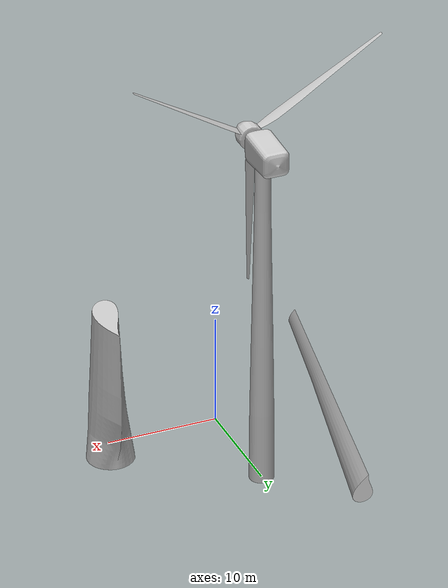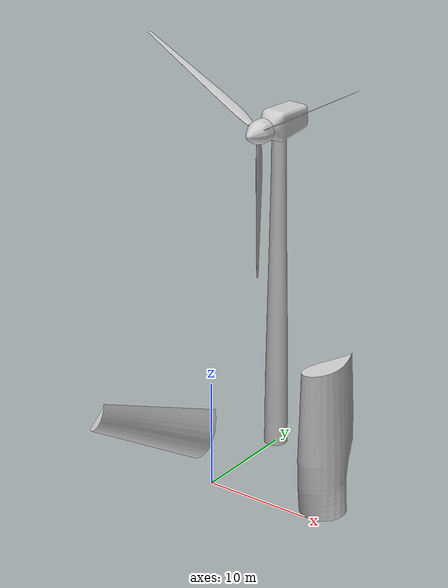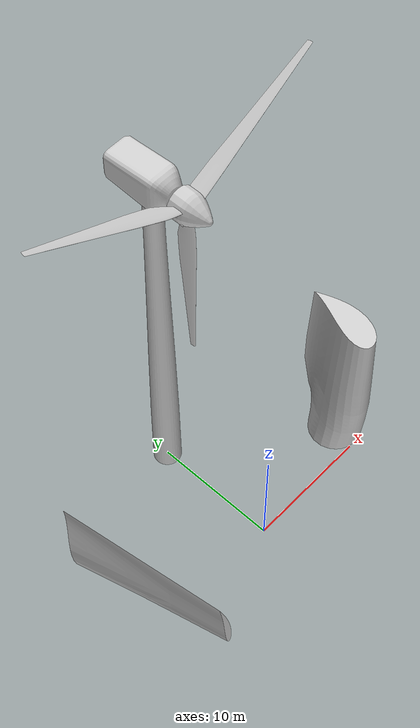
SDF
<sdf version="1.9">
 <world name="js_turbine">
  <physics name="1ms" type="ignore">
   <max_step_size>0.001</max_step_size>
   <real_time_factor>1.0</real_time_factor>
  </physics>
  <plugin filename="gz-sim-wind-effects-system" name="gz::sim::systems::WindEffects">
   <force_approximation_scaling_factor>1</force_approximation_scaling_factor>
  </plugin>
  <plugin filename="gz-sim-contact-system" name="gz::sim::systems::Contact"/>
  <plugin filename="gz-sim-physics-system" name="gz::sim::systems::Physics"/>
  <plugin filename="gz-sim-sensors-system" name="gz::sim::systems::Sensors">
   <render_engine>ogre2</render_engine>
  </plugin>
  <plugin filename="gz-sim-user-commands-system" name="gz::sim::systems::UserCommands"/>
  <plugin filename="gz-sim-scene-broadcaster-system" name="gz::sim::systems::SceneBroadcaster"/>
  <plugin filename="gz-sim-imu-system" name="gz::sim::systems::Imu"/>
  <plugin filename="gz-sim-navsat-system" name="gz::sim::systems::NavSat"/>
  <scene><ambient>1.0 1.0 1.0</ambient><background>0.8 0.8 0.8</background></scene>
  <spherical_coordinates>
   <latitude_deg>-35.363262</latitude_deg>
   <longitude_deg>149.165237</longitude_deg>
   <elevation>584</elevation>
   <heading_deg>0</heading_deg>
   <surface_model>EARTH_WGS84</surface_model>
  </spherical_coordinates>
  <light type="directional" name="sun">
   <pose>0 0 10 0 0 0</pose>
   <diffuse>0.8 0.8 0.8 1</diffuse>
   <specular>0.8 0.8 0.8 1</specular>
   <attenuation>
    <range>1000</range>
    <constant>0.9</constant>
    <linear>0.01</linear>
    <quadratic>0.001</quadratic>
   </attenuation>
   <direction>-0.5 0.1 -0.9</direction>
  </light>
  <model name="axes">
   <static>1</static>
   <link name="link">
    <sensor name="navsat_sensor" type="navsat"><always_on>1</always_on><update_rate>1</update_rate></sensor>
   </link>
  </model>
  <include><uri>model://wind_turbine</uri><pose degrees="true">0 10 0 0 0 0</pose></include>
  <include><uri>model://blade_root</uri><pose degrees="true">10 0 0 0 0 90</pose></include>
  <include><uri>model://blade_tip</uri><pose degrees="true">-10 10 -5 0 -60 90</pose></include>
 </world>
</sdf>

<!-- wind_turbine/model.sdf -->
<sdf version='1.9'>
  <model name='wind_turbine'>
  <static>true</static>
    <link name='tower_link'>
      <collision name="tower_collision">
        <geometry>
          <mesh>
            <uri>model://wind_turbine/meshes/tower.stl</uri>
            <scale> 0.072 0.072 0.125 </scale>
          </mesh>
        </geometry>
      </collision>
      <visual name="tower_visual">
        <geometry>
          <mesh>
            <uri>model://wind_turbine/meshes/tower.stl</uri>
            <scale> 0.072 0.072 0.125 </scale>
          </mesh>
        </geometry>
        <material>
          <ambient>0.8 0.8 0.8 1</ambient>
          <diffuse>0.8 0.8 0.8 1</diffuse>
          <specular>0.1 0.1 0.1 1.0</specular>
           <pbr>
            <metal>
              <roughness>0.6</roughness>
              <metalness>0.6</metalness>
            </metal>
          </pbr>
        </material>
      </visual>
    </link>

    <link name="generator_link">
      <pose relative_to="tower_link">0 0 31.5 0 0 1.57</pose>
      <visual name="generator_visual">
        <geometry>
          <mesh>
            <uri>model://wind_turbine/meshes/generator.stl</uri>
            <scale> 0.072 0.072 0.072 </scale>
          </mesh>
        </geometry>
        <material>
          <ambient>0.8 0.8 0.8 1</ambient>
          <diffuse>0.8 0.8 0.8 1</diffuse>
          <specular>0.1 0.1 0.1 1.0</specular>
           <pbr>
            <metal>
              <roughness>0.6</roughness>
              <metalness>0.6</metalness>
            </metal>
          </pbr>
        </material>
      </visual>
    </link>

    <link name="hub_link">
      <pose relative_to="generator_link">-3.3984 0 0 0 0 0</pose>
      <visual name="hub_visual">
      <geometry>
          <mesh>
            <uri>model://wind_turbine/meshes/hub.stl</uri>
            <scale> 0.072 0.072 0.072 </scale>
          </mesh>
        </geometry>
        <material>
          <ambient>0.8 0.8 0.8 1</ambient>
          <diffuse>0.8 0.8 0.8 1</diffuse>
          <specular>0.1 0.1 0.1 1.0</specular>
           <pbr>
            <metal>
              <roughness>0.6</roughness>
              <metalness>0.6</metalness>
            </metal>
          </pbr>
        </material>
      </visual>
    </link>

    <link name='blade1_link'>
    <pose relative_to="hub_link">0 0 -1.08 0 0 .15</pose>
      <collision name="blade1_collision">
        <geometry>
          <mesh>
            <uri>model://wind_turbine/meshes/blade.stl</uri>
            <scale> 0.05 0.01 0.072 </scale>
          </mesh>
        </geometry>
        <surface>
                <friction>
                    <ode>
                        <mu>
                            10000.0
                        </mu>
                        <mu2>
                            10000.0
                        </mu2>
                    </ode>
                </friction>
                <contact>
                    <ode>
                    <max_vel>0</max_vel>
                    <min_depth>0.001</min_depth>
                    </ode>
                </contact>
                </surface>
      </collision>
      <visual name="blade1_visual">
        <geometry>
          <mesh>
            <uri>model://wind_turbine/meshes/blade.stl</uri>
            <scale> 0.05 0.01 0.072 </scale>
          </mesh>
        </geometry>
        <material>
          <ambient>0.8 0.8 0.8 1</ambient>
          <diffuse>0.8 0.8 0.8 1</diffuse>
          <specular>0.1 0.1 0.1 1.0</specular>
           <pbr>
            <metal>
              <roughness>0.6</roughness>
              <metalness>0.6</metalness>
            </metal>
          </pbr>
        </material>
      </visual>
    </link>

    <link name='blade2_link'>
    <pose relative_to="hub_link">0 0.9353088 0.54 2.0944 0 0</pose>
      <collision name="blade2_collision">
        <geometry>
          <mesh>
            <uri>model://wind_turbine/meshes/blade.stl</uri>
            <scale> 0.05 0.01 0.072 </scale>
          </mesh>
        </geometry>
        <surface>
                <friction>
                    <ode>
                        <mu>
                            10000.0
                        </mu>
                        <mu2>
                            10000.0
                        </mu2>
                    </ode>
                </friction>
                <contact>
                    <ode>
                    <max_vel>0</max_vel>
                    <min_depth>0.001</min_depth>
                    </ode>
                </contact>
                </surface>
      </collision>
      <visual name="blade2_visual">
        <geometry>
          <mesh>
            <uri>model://wind_turbine/meshes/blade.stl</uri>
            <scale> 0.05 0.01 0.072 </scale>
          </mesh>
        </geometry>
        <material>
          <ambient>0.8 0.8 0.8 1</ambient>
          <diffuse>0.8 0.8 0.8 1</diffuse>
          <specular>0.1 0.1 0.1 1.0</specular>
           <pbr>
            <metal>
              <roughness>0.6</roughness>
              <metalness>0.6</metalness>
            </metal>
          </pbr>
        </material>
      </visual>
    </link>

    <link name='blade3_link'>
    <pose relative_to="hub_link">0 0.9353088 -0.54 -2.0944 0 0</pose>
      <collision name="blade3_collision">
        <geometry>
          <mesh>
            <uri>model://wind_turbine/meshes/blade.stl</uri>
            <scale> 0.05 0.01 0.072 </scale>
          </mesh>
        </geometry>
        <surface>
                <friction>
                    <ode>
                        <mu>
                            10000.0
                        </mu>
                        <mu2>
                            10000.0
                        </mu2>
                    </ode>
                </friction>
                <contact>
                    <ode>
                    <max_vel>0</max_vel>
                    <min_depth>0.001</min_depth>
                    </ode>
                </contact>
                </surface>
      </collision>
      <visual name="blade3_visual">
        <geometry>
          <mesh>
            <uri>model://wind_turbine/meshes/blade.stl</uri>
            <scale> 0.05 0.01 0.072 </scale>
          </mesh>
        </geometry>
       <material>
          <ambient>0.8 0.8 0.8 1</ambient>
          <diffuse>0.8 0.8 0.8 1</diffuse>
          <specular>0.1 0.1 0.1 1.0</specular>
           <pbr>
            <metal>
              <roughness>0.6</roughness>
              <metalness>0.6</metalness>
            </metal>
          </pbr>
        </material>
      </visual>
    </link>

  </model>
</sdf>

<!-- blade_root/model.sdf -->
<sdf version='1.9'>
  <model name='blade_root'>
  <static>true</static>
    <link name='blade_link'>
        <velocity_decay>
            <linear>1000000</linear>  <!-- Higher values mean more damping, hence slower max speed -->
            <angular>1000000</angular>
        </velocity_decay>
        <self_collide>true</self_collide>
        <inertial>
            <mass>1000000</mass>
            <inertia>
              <ixx>1000000</ixx>
              <iyy>1000000</iyy>
              <izz>1000000</izz>
            </inertia>
          </inertial>
      <collision name="blade_collision">
        <geometry>
          <mesh>
            <uri>model://blade_root/meshes/blade_root.stl</uri>
            <scale> 0.25 0.25 0.25 </scale>
          </mesh>
        </geometry>
        <surface>
            <friction>
                <ode>
                    <mu>
                        50.0
                    </mu>
                    <mu2>
                        50.0
                    </mu2>
                </ode>
            </friction>
            <contact>
              <ode>
                <max_vel>0</max_vel>
                <min_depth>0.01</min_depth>
              </ode>
            </contact>
          </surface>
      </collision>
      <visual name="blade1_visual">
        <geometry>
          <mesh>
            <uri>model://blade_root/meshes/blade_root.stl</uri>
            <scale> 0.25 0.25 0.25 </scale>
          </mesh>
        </geometry>
        <material>
          <ambient>0.8 0.8 0.8 1</ambient>
          <diffuse>0.8 0.8 0.8 1</diffuse>
          <specular>1.0 1.0 1.0 1.0</specular>
        </material>
      </visual>
    </link>
  </model>
</sdf>

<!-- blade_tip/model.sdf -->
<sdf version='1.9'>
  <model name='blade_tip'>
  <static>true</static>
    <link name='blade_link'>
      <collision name="blade_collision">
        <geometry>
          <mesh>
            <uri>model://blade_tip/meshes/blade_tip.stl</uri>
            <scale> 0.25 0.25 0.25 </scale>
          </mesh>
        </geometry>
      </collision>
      <visual name="blade_visual">
        <geometry>
          <mesh>
            <uri>model://blade_tip/meshes/blade_tip.stl</uri>
            <scale> 0.25 0.25 0.25 </scale>
          </mesh>
        </geometry>
        <material>
          <ambient>0.8 0.8 0.8 1</ambient>
          <diffuse>0.8 0.8 0.8 1</diffuse>
          <specular>1.0 1.0 1.0 1.0</specular>
        </material>
      </visual>
    </link>
  </model>
</sdf>
